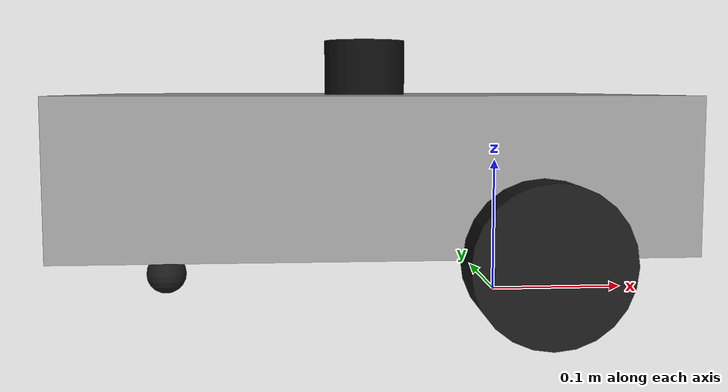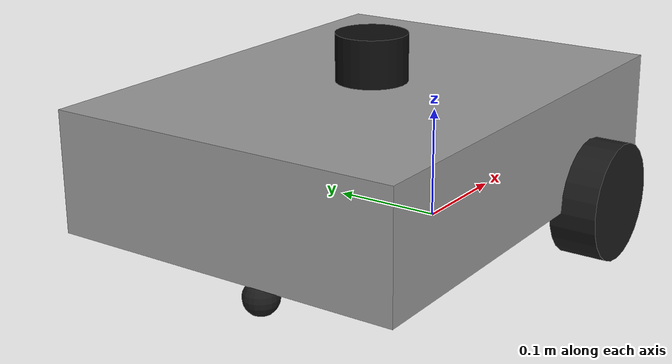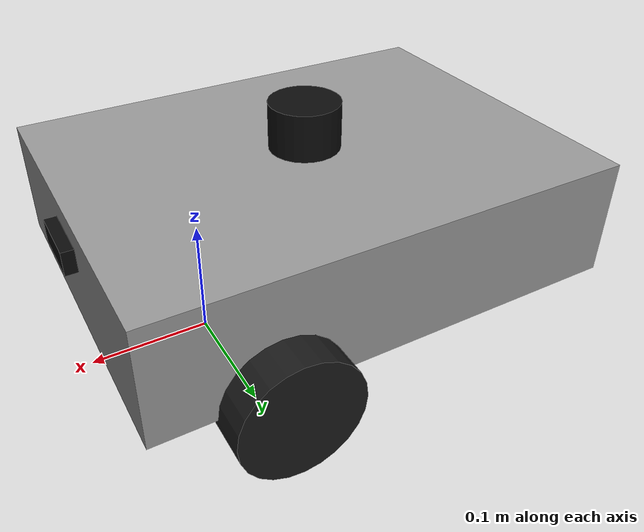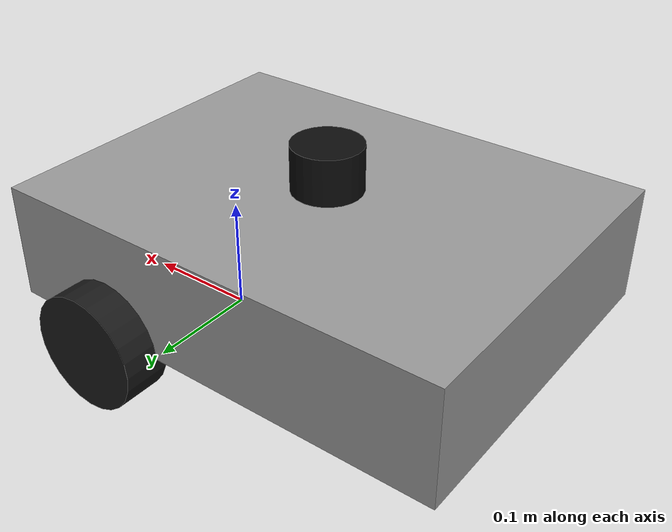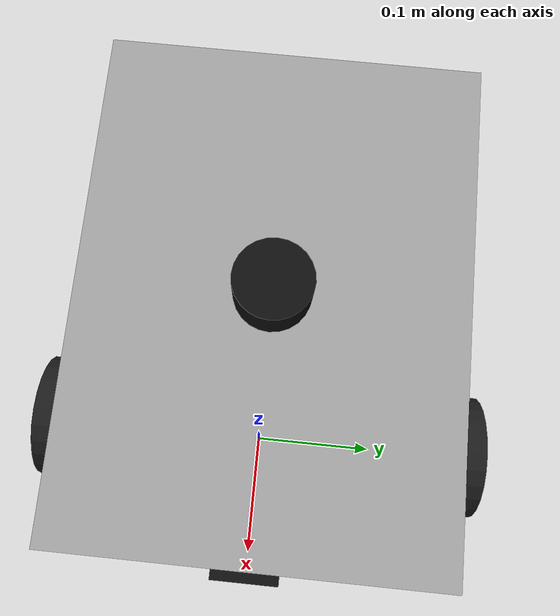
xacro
<?xml version="1.0"?>
<robot name="my_robot" xmlns:xacro="http://ros.org/wiki/xacro">

  <xacro:include filename="$(find robot_description)/urdf/inertial_macros.xacro"/>

  <!-- ================= Properties ================= -->
  <xacro:property name="base_length" value="0.4"/>
  <xacro:property name="base_width" value="0.3"/>
  <xacro:property name="base_height" value="0.1"/>
  <xacro:property name="base_mass" value="5.0"/>
  <xacro:property name="base_z_offset" value="0.1"/>

  <xacro:property name="wheel_radius" value="0.05"/>
  <xacro:property name="wheel_thickness" value="0.04"/>
  <xacro:property name="wheel_mass" value="0.5"/>
  <xacro:property name="wheel_separation" value="0.32"/>
  <xacro:property name="wheel_offset_x" value="0.10"/>

  <xacro:property name="caster_radius" value="0.015"/>
  <xacro:property name="caster_mass" value="0.1"/>
  <xacro:property name="caster_offset_x" value="-0.15"/>

  <xacro:property name="lidar_radius" value="0.03"/>
  <xacro:property name="lidar_length" value="0.04"/>
  <xacro:property name="lidar_mass" value="0.1"/>

  <xacro:property name="camera_size" value="0.02 0.05 0.02"/>
  <xacro:property name="camera_mass" value="0.05"/>

  <!-- ================= base_footprint ================= -->
  <link name="base_footprint"/>

  <joint name="base_joint" type="fixed">
    <parent link="base_footprint"/>
    <child link="base_link"/>
    <origin xyz="${-wheel_offset_x} 0 ${base_z_offset}" rpy="0 0 0"/>
  </joint>

  <!-- ================= base_link ================= -->
  <link name="base_link">
    <visual>
      <origin xyz="0 0 0" rpy="0 0 0"/>
      <geometry>
        <box size="${base_length} ${base_width} ${base_height}"/>
      </geometry>
      <material name="body_grey">
        <color rgba="0.6 0.6 0.6 1.0"/>
      </material>
    </visual>
    <collision>
      <origin xyz="0 0 0" rpy="0 0 0"/>
      <geometry>
        <box size="${base_length} ${base_width} ${base_height}"/>
      </geometry>
    </collision>
    <xacro:inertial_box mass="${base_mass}" x="${base_length}" y="${base_width}" z="${base_height}">
      <origin xyz="0 0 0" rpy="0 0 0"/>
    </xacro:inertial_box>
  </link>

  <!-- ================= Drive Wheels ================= -->
  <xacro:macro name="wheel_link" params="prefix reflect">
    <link name="${prefix}_wheel">
      <visual>
        <origin xyz="0 0 0" rpy="${pi/2} 0 0"/>
        <geometry>
          <cylinder radius="${wheel_radius}" length="${wheel_thickness}"/>
        </geometry>
        <material name="wheel_black">
          <color rgba="0.1 0.1 0.1 1.0"/>
        </material>
      </visual>
      <collision>
        <origin xyz="0 0 0" rpy="${pi/2} 0 0"/>
        <geometry>
          <cylinder radius="${wheel_radius}" length="${wheel_thickness}"/>
        </geometry>
      </collision>
      <xacro:inertial_cylinder mass="${wheel_mass}" length="${wheel_thickness}" radius="${wheel_radius}">
        <origin xyz="0 0 0" rpy="${pi/2} 0 0"/>
      </xacro:inertial_cylinder>
    </link>

    <joint name="${prefix}_wheel_joint" type="continuous">
      <parent link="base_link"/>
      <child link="${prefix}_wheel"/>
      <origin xyz="${wheel_offset_x} ${reflect * wheel_separation / 2} ${wheel_radius - base_z_offset}" rpy="0 0 0"/>
      <axis xyz="0 1 0"/>
    </joint>
  </xacro:macro>

  <xacro:wheel_link prefix="left" reflect="1"/>
  <xacro:wheel_link prefix="right" reflect="-1"/>

  <!-- ================= Caster Wheel ================= -->
  <link name="caster_wheel">
    <visual>
      <geometry>
        <sphere radius="${caster_radius}"/>
      </geometry>
      <material name="wheel_black">
        <color rgba="0.1 0.1 0.1 1.0"/>
      </material>
    </visual>
    <collision>
      <geometry>
        <sphere radius="${caster_radius}"/>
      </geometry>
    </collision>
    <xacro:inertial_sphere mass="${caster_mass}" radius="${caster_radius}">
      <origin xyz="0 0 0" rpy="0 0 0"/>
    </xacro:inertial_sphere>
  </link>

  <joint name="caster_joint" type="fixed">
    <parent link="base_link"/>
    <child link="caster_wheel"/>
    <origin xyz="${caster_offset_x} 0 ${caster_radius - base_z_offset}" rpy="0 0 0"/>
  </joint>

  <!-- ================= LiDAR ================= -->
  <link name="lidar_link">
    <visual>
      <geometry>
        <cylinder radius="${lidar_radius}" length="${lidar_length}"/>
      </geometry>
      <material name="lidar_black">
        <color rgba="0.05 0.05 0.05 1.0"/>
      </material>
    </visual>
    <collision>
      <geometry>
        <cylinder radius="${lidar_radius}" length="${lidar_length}"/>
      </geometry>
    </collision>
    <xacro:inertial_cylinder mass="${lidar_mass}" length="${lidar_length}" radius="${lidar_radius}">
      <origin xyz="0 0 0" rpy="0 0 0"/>
    </xacro:inertial_cylinder>
  </link>

  <joint name="lidar_joint" type="fixed">
    <parent link="base_link"/>
    <child link="lidar_link"/>
    <origin xyz="0 0 ${base_height/2 + lidar_length/2}" rpy="0 0 0"/>
  </joint>

  <!-- ================= Camera ================= -->
  <link name="camera_link">
    <visual>
      <geometry>
        <box size="${camera_size}"/>
      </geometry>
      <material name="camera_black">
        <color rgba="0.05 0.05 0.05 1.0"/>
      </material>
    </visual>
    <collision>
      <geometry>
        <box size="${camera_size}"/>
      </geometry>
    </collision>
    <xacro:inertial_box mass="${camera_mass}" x="0.02" y="0.05" z="0.02">
      <origin xyz="0 0 0" rpy="0 0 0"/>
    </xacro:inertial_box>
  </link>

  <joint name="camera_joint" type="fixed">
    <parent link="base_link"/>
    <child link="camera_link"/>
    <origin xyz="${base_length/2} 0 0.02" rpy="0 0 0"/>
  </joint>

  <link name="camera_link_optical"/>

  <joint name="camera_optical_joint" type="fixed">
    <parent link="camera_link"/>
    <child link="camera_link_optical"/>
    <origin xyz="0 0 0" rpy="${-pi/2} 0 ${-pi/2}"/>
  </joint>

  <xacro:include filename="$(find robot_description)/urdf/gazebo.xacro"/>

</robot>

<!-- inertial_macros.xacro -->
<robot xmlns:xacro="http://ros.org/wiki/xacro">

  <xacro:macro name="inertial_sphere" params="mass radius *origin">
    <inertial>
      <xacro:insert_block name="origin"/>
      <mass value="${mass}"/>
      <inertia ixx="${(2/5) * mass * (radius*radius)}" ixy="0.0" ixz="0.0"
               iyy="${(2/5) * mass * (radius*radius)}" iyz="0.0"
               izz="${(2/5) * mass * (radius*radius)}"/>
    </inertial>
  </xacro:macro>

  <xacro:macro name="inertial_box" params="mass x y z *origin">
    <inertial>
      <xacro:insert_block name="origin"/>
      <mass value="${mass}"/>
      <inertia ixx="${(1/12) * mass * (y*y+z*z)}" ixy="0.0" ixz="0.0"
               iyy="${(1/12) * mass * (x*x+z*z)}" iyz="0.0"
               izz="${(1/12) * mass * (x*x+y*y)}"/>
    </inertial>
  </xacro:macro>

  <xacro:macro name="inertial_cylinder" params="mass length radius *origin">
    <inertial>
      <xacro:insert_block name="origin"/>
      <mass value="${mass}"/>
      <inertia ixx="${(1/12) * mass * (3*radius*radius + length*length)}" ixy="0.0" ixz="0.0"
               iyy="${(1/12) * mass * (3*radius*radius + length*length)}" iyz="0.0"
               izz="${(1/2) * mass * (radius*radius)}"/>
    </inertial>
  </xacro:macro>

</robot>
